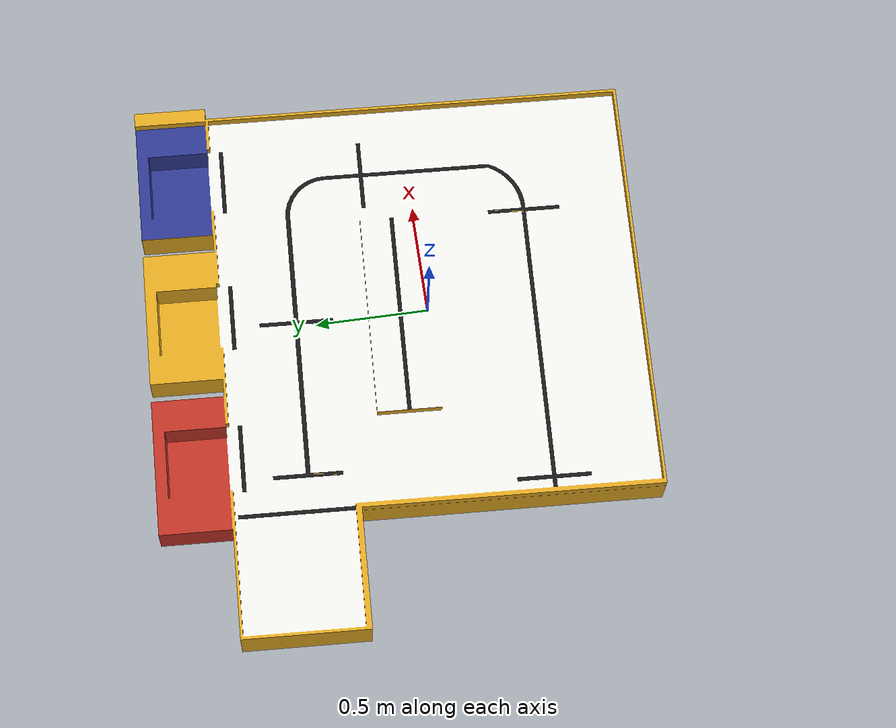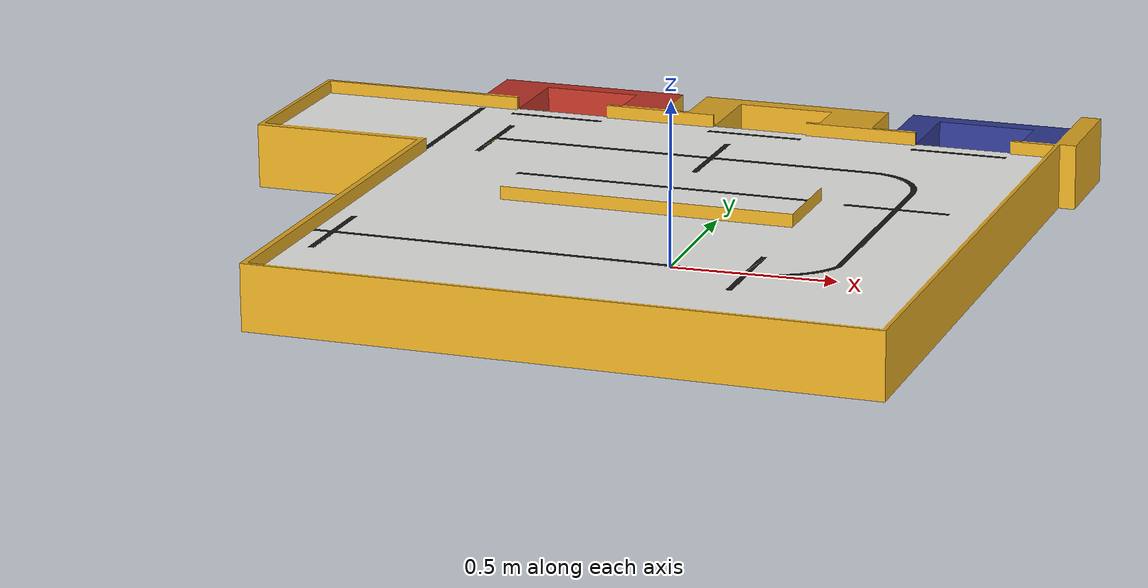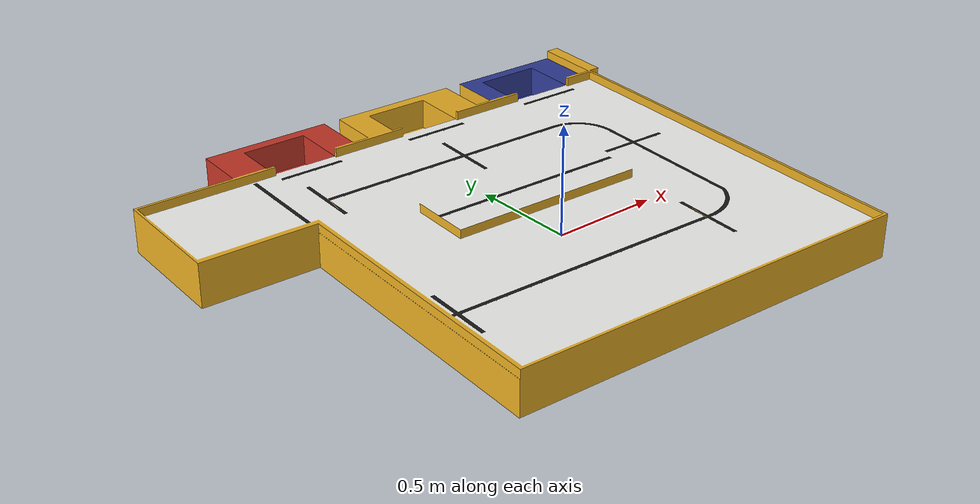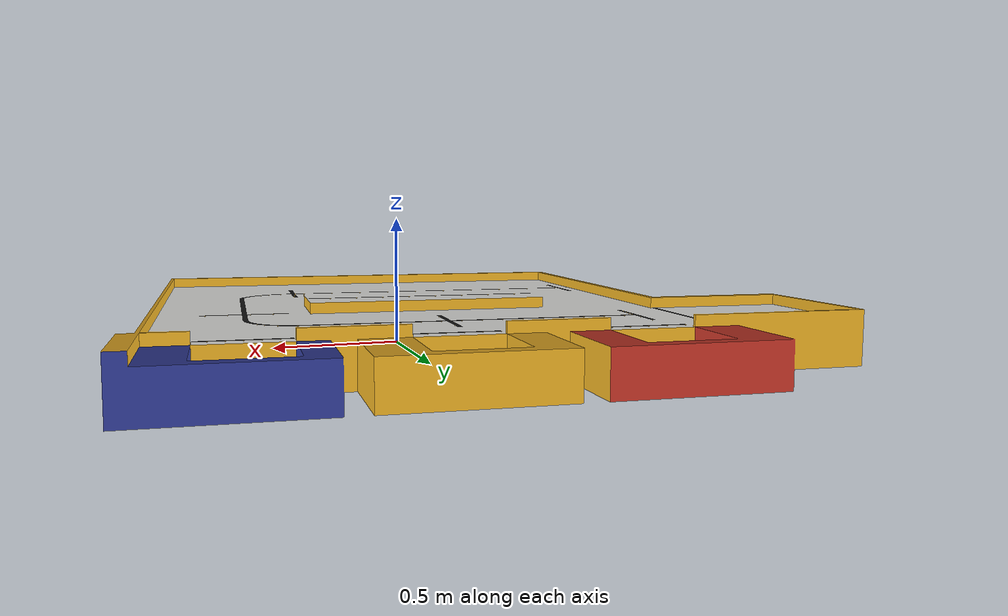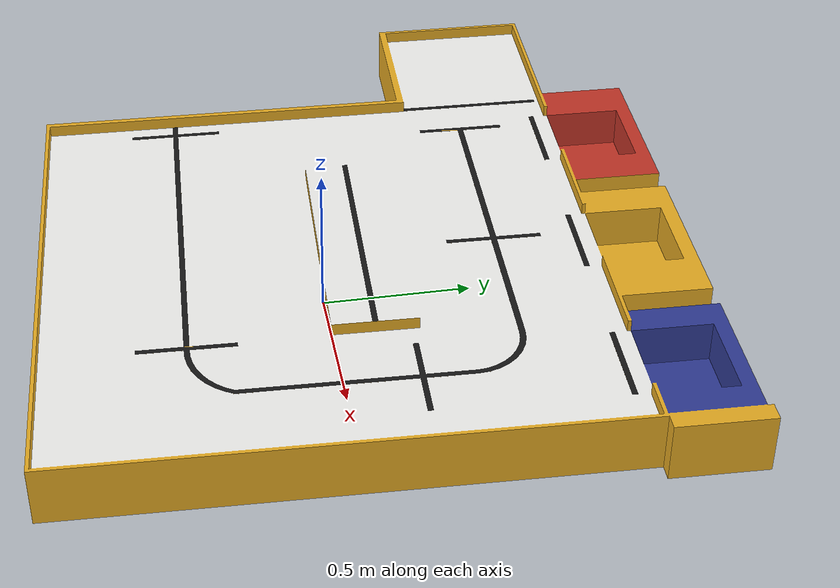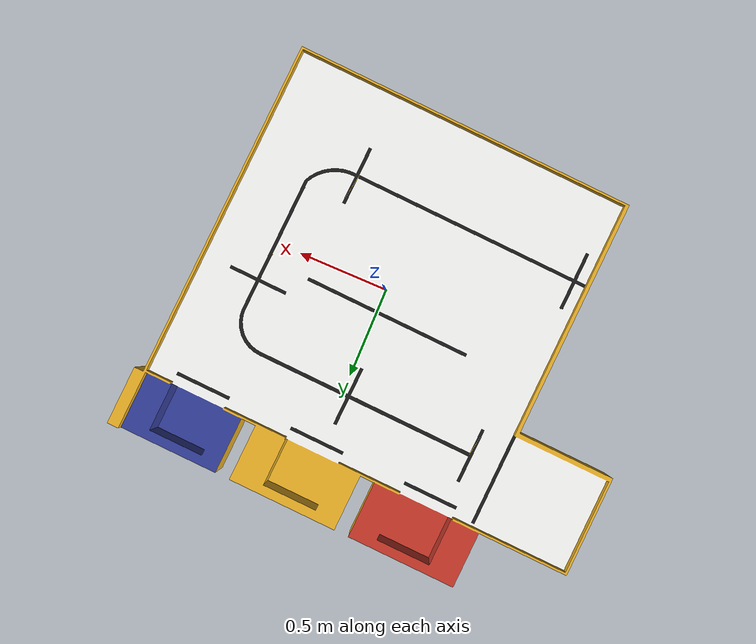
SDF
<?xml version="1.0" ?>
<sdf version="1.7">
  <model name="irc_table">
    <static>true</static>
    <link name="link">
      <collision name="collision">
        <geometry>
          <mesh>
            <scale>1 1 1</scale>
            <uri>model://irc_table/meshes/irc_stage.stl</uri>
          </mesh>
        </geometry>
      </collision>
      <visual name="visual">
        <geometry>
          <mesh>
            <scale>1 1 1</scale>
            <uri>model://irc_table/meshes/irc_stage.dae</uri>
          </mesh>
        </geometry>
      </visual>
    </link>
  </model>
</sdf>
